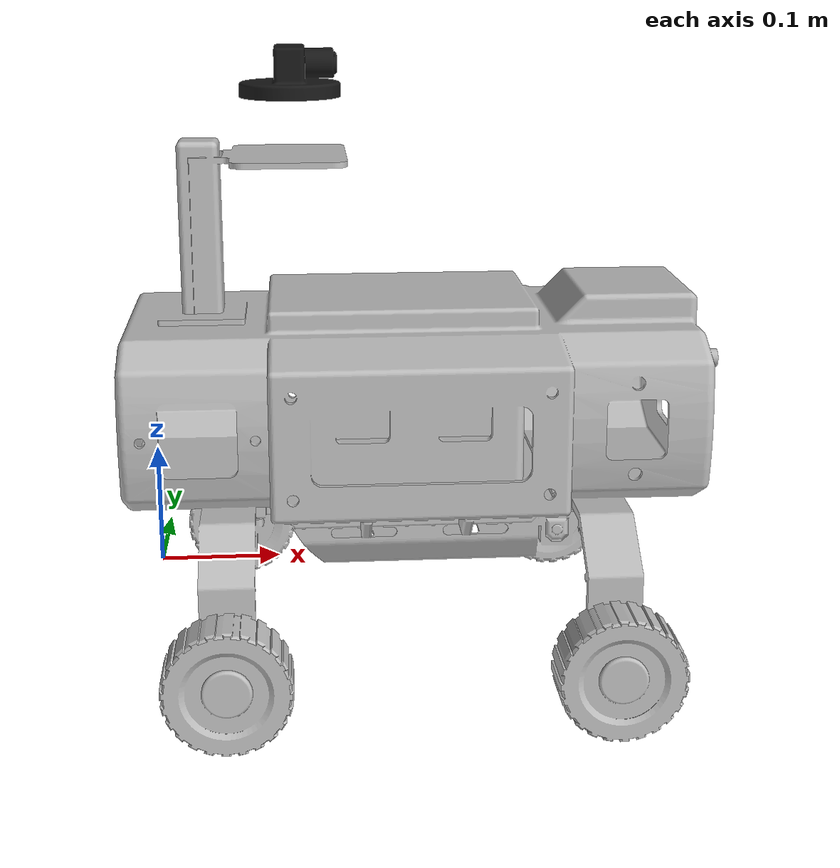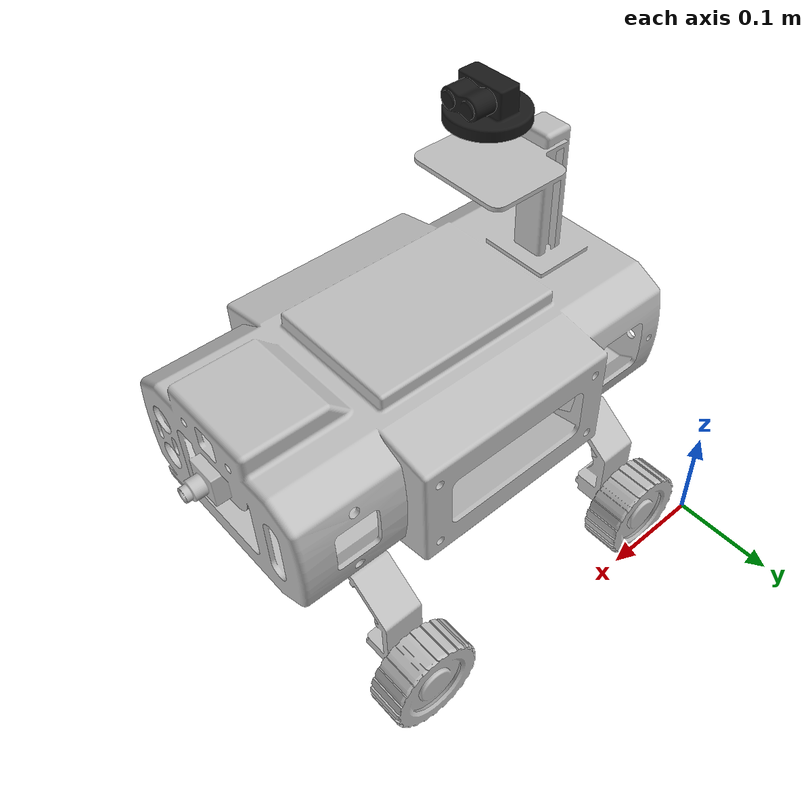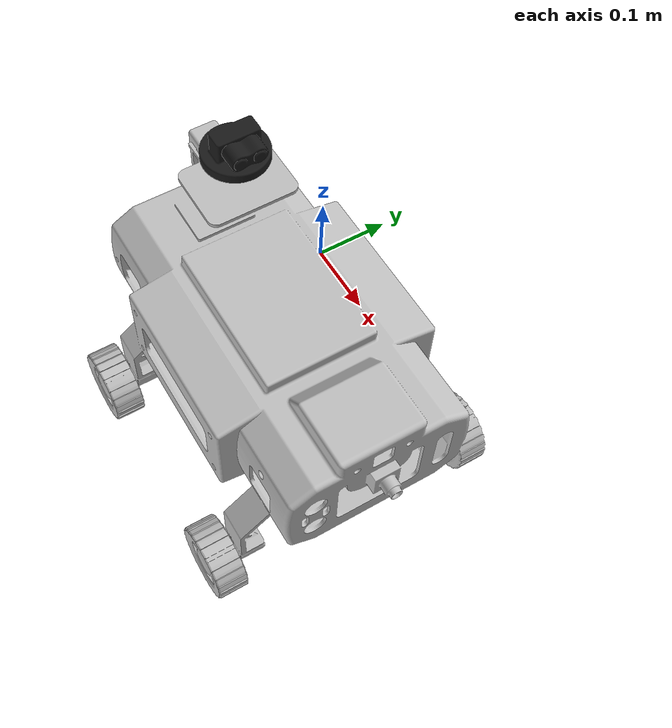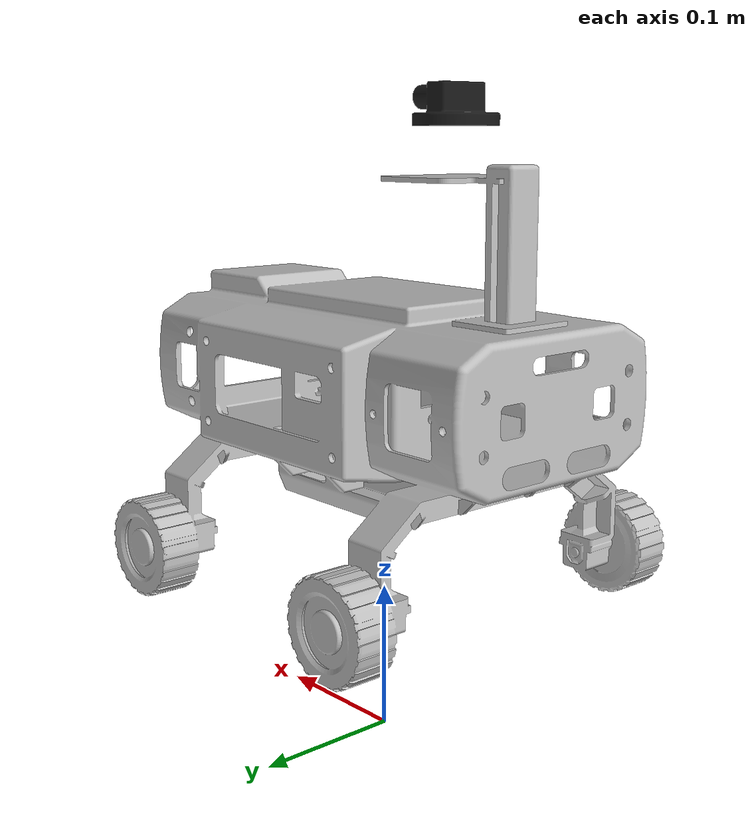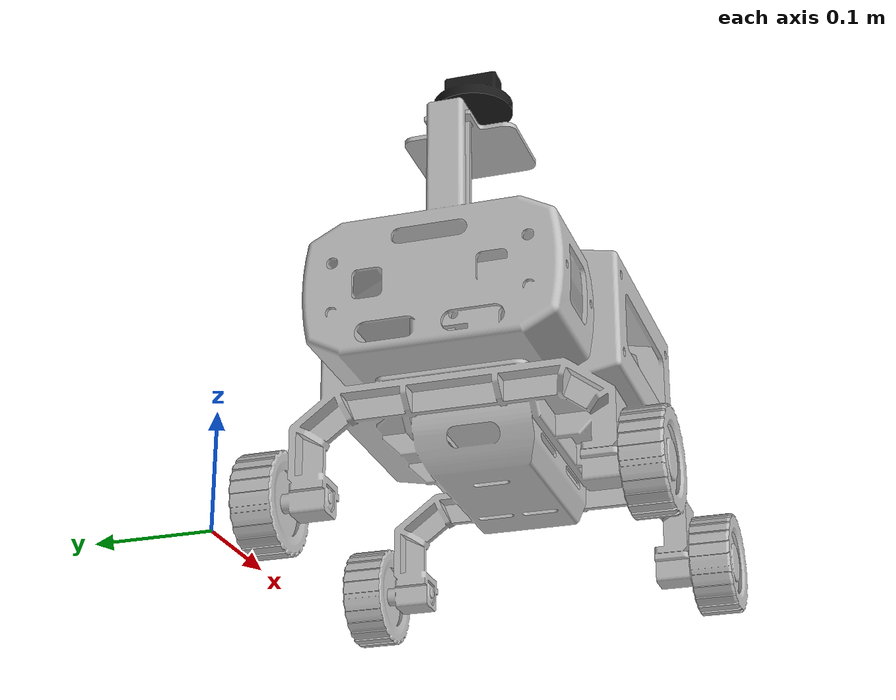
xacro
<?xml version="1.0" ?>
<robot name="bot" xmlns:xacro="http://www.ros.org/wiki/xacro">

    <!-- ── Arguments ─────────────────────────────────────────────── -->
    <xacro:arg name="is_sim"        default="false"/>
    <xacro:arg name="lidar_profile" default="os1_64"/>
    <xacro:arg name="robot_type"    default="rover"/>

    <xacro:include filename="$(find lidar3d_stack)/description/gazebo.xacro"/>

    <xacro:property name="robot"    value="$(arg robot_type)"/>
    <!-- ROVER -->
    <xacro:if value="${robot == 'rover'}">
        <xacro:include filename="$(find lidar3d_stack)/description/rover.xacro"/>
    </xacro:if>

    <!-- DRONE -->
    <xacro:if value="${robot == 'drone'}">
        <xacro:include filename="$(find lidar3d_stack)/description/drone.xacro"/>
    </xacro:if>

</robot>

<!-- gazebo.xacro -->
<robot name="bot" xmlns:xacro="http://www.ros.org/wiki/xacro">

    <xacro:arg      name="lidar_profile" default="os1_64"/>
    <xacro:property name="profile"       value="$(arg lidar_profile)"/>

    <!-- ── PROFILE 1 : OS1-64 64-beam (DEFAULT) ── -->
    <xacro:if value="${profile == 'os1_64'}">
        <gazebo reference="lidar_link">
            <sensor name="lidar_os1_64" type="gpu_lidar">
                <pose>0 0 0.1 0 0 0</pose>
                <always_on>true</always_on>
                <visualize>true</visualize>
                <topic>scan_3d</topic>
                <update_rate>10</update_rate>
                <gz_frame_id>lidar_link</gz_frame_id>
                <lidar>
                    <scan>
                        <horizontal>
                            <samples>360</samples>
                            <resolution>1.0</resolution>
                            <min_angle>-3.14159</min_angle>
                            <max_angle>3.14159</max_angle>
                        </horizontal>
                        <vertical>
                            <samples>64</samples>
                            <resolution>1.0</resolution>
                            <min_angle>-0.39269</min_angle>
                            <max_angle>0.39269</max_angle>
                        </vertical>
                    </scan>
                    <range>
                        <min>0.05</min>
                        <max>120.0</max>
                        <resolution>0.02</resolution>
                    </range>
                    <noise>
                        <type>gaussian</type>
                        <mean>0.0</mean>
                        <stddev>0.03</stddev>
                    </noise>
                </lidar>
            </sensor>
        </gazebo>
    </xacro:if>

    <!-- ── PROFILE 2 : VLP-16 16-beam ── -->
    <xacro:if value="${profile == 'vlp16'}">
        <gazebo reference="lidar_link">
            <sensor name="lidar_vlp16" type="gpu_lidar">
                <pose>0 0 0 0 0 0</pose>
                <always_on>true</always_on>
                <visualize>true</visualize>
                <topic>scan_3d</topic>
                <update_rate>10</update_rate>
                <gz_frame_id>lidar_link</gz_frame_id>
                <lidar>
                    <scan>
                        <horizontal>
                            <samples>360</samples>
                            <resolution>1.0</resolution>
                            <min_angle>-3.14159</min_angle>
                            <max_angle>3.14159</max_angle>
                        </horizontal>
                        <vertical>
                            <samples>16</samples>
                            <resolution>1.0</resolution>
                            <min_angle>-0.26179</min_angle>
                            <max_angle>0.26179</max_angle>
                        </vertical>
                    </scan>
                    <range>
                        <min>0.05</min>
                        <max>120.0</max>
                        <resolution>0.02</resolution>
                    </range>
                    <noise>
                        <type>gaussian</type>
                        <mean>0.0</mean>
                        <stddev>0.03</stddev>
                    </noise>
                </lidar>
            </sensor>
        </gazebo>
    </xacro:if>

</robot>

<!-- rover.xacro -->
<robot name="bot" xmlns:xacro="http://www.ros.org/wiki/xacro">

    <link name="base_footprint"/>

    <link name="base_link">
        <inertial>
            <!-- ⚠️ Update these values once rover mass properties PDF is readable -->
            <origin xyz="0 0 0" rpy="0 0 0"/>
            <mass value="15.0"/>
            <!-- Estimated for a rover of this size -->
            <inertia ixx="0.5"    ixy="0.0"  ixz="0.0"
                     iyy="0.8"    iyz="0.0"
                     izz="0.8"/>
        </inertial>
        <visual>
            <origin xyz="0 0 0" rpy="1.5708 0 0"/>
            <!-- rpy 1.5708 rotates mesh to correct orientation -->
            <geometry>
                <mesh filename="package://lidar3d_stack/meshes/rover.stl"
                      scale="0.002 0.002 0.002"/>
            </geometry>
            <material name="grey">
                <color rgba="0.75 0.75 0.75 1.0"/>
            </material>
        </visual>
        <collision>
            <origin xyz="0 0 0" rpy="0 0 0"/>
            <geometry>
                <!-- Approximate bounding box of rover -->
                <box size="0.45 0.45 0.15"/>
            </geometry>
        </collision>
    </link>

    <joint name="base_joint" type="fixed">
        <parent link="base_footprint"/>
        <child  link="base_link"/>
        <origin xyz="0 0 0" rpy="0 0 0"/>
    </joint>

    <link name="lidar_link">
        <inertial>
            <origin xyz="0.01505 0.01275 -0.01744" rpy="0 0 0"/>
            <mass value="0.02526"/>
            <inertia ixx="0.000004983"  ixy="-0.000000061"  ixz="0.0000000017"
                     iyy="0.000004054"  iyz="-0.000000061"
                     izz="0.000004671"/>
        </inertial>
        <visual>
            <origin xyz="0 0 0" rpy="1.5708 0 0"/>
            <geometry>
                <mesh filename="package://lidar3d_stack/meshes/rover_lidar.stl"
                      scale="0.002 0.002 0.002"/>
                <!-- scale 0.001 converts mm to meters -->
            </geometry>
            <material name="black">
                <color rgba="0.1 0.1 0.1 1.0"/>
            </material>
        </visual>
        <collision>
            <origin xyz="0 0 0" rpy="0 0 0"/>
            <geometry>
                <cylinder radius="0.04" length="0.06"/>
            </geometry>
        </collision>
    </link>

    <joint name="lidar_joint" type="fixed">
        <parent link="base_link"/>
        <child  link="lidar_link"/>
        <origin xyz="0 0 0.02 " rpy="0 0 0"/>
    </joint>

    <gazebo reference="base_link">
        <static>true</static>
        <self_collide>false</self_collide>
    </gazebo>

</robot>
